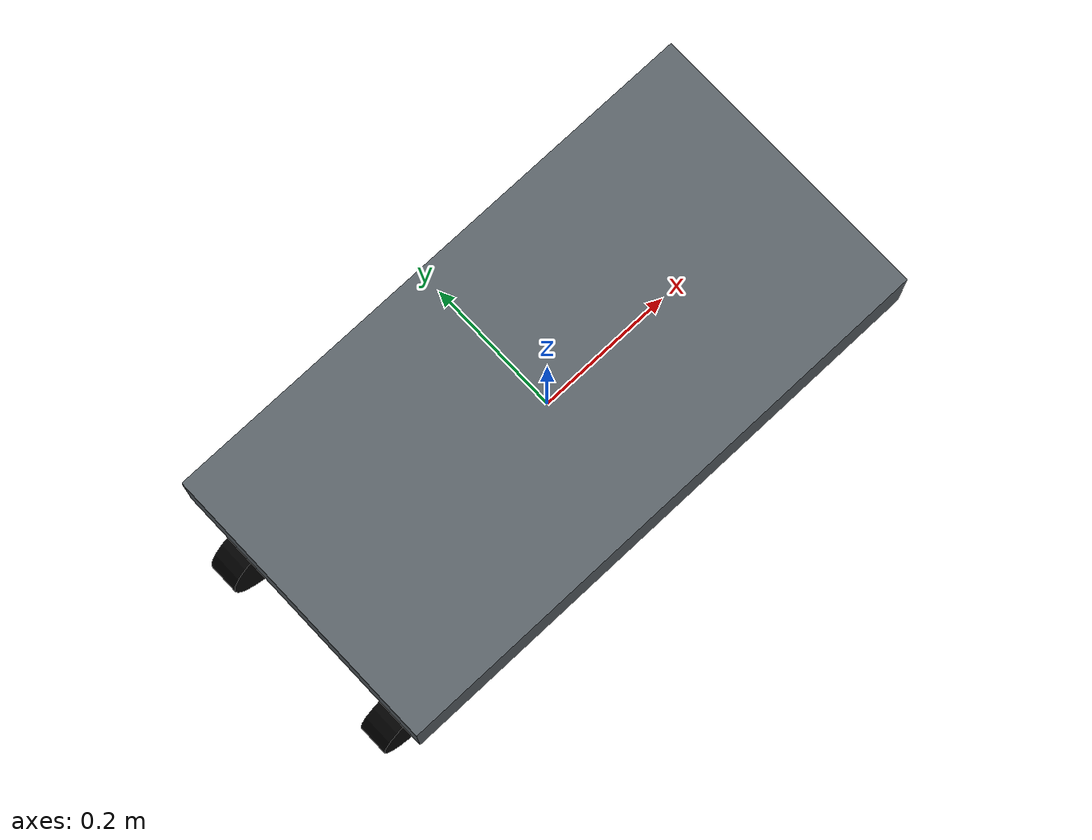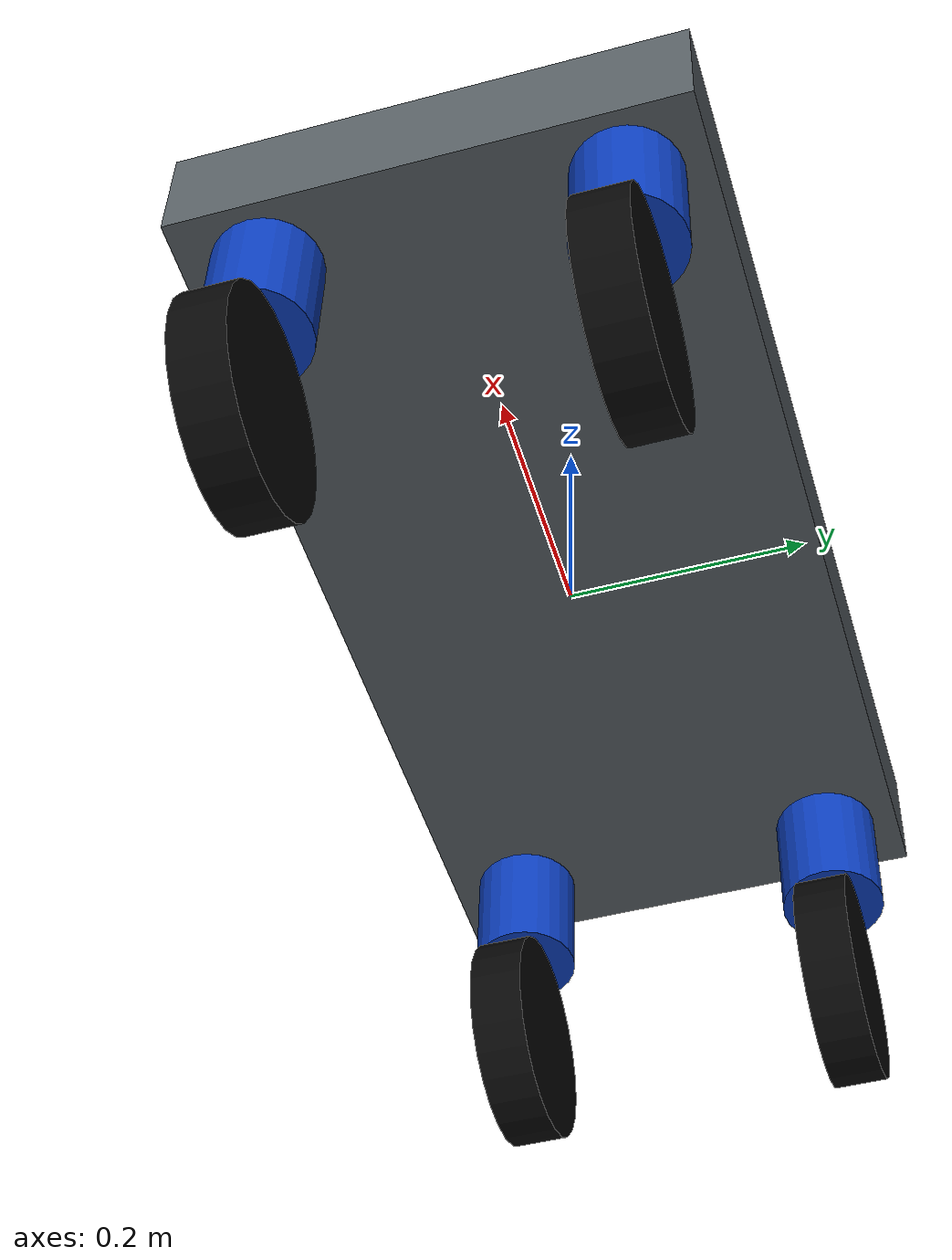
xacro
<?xml version="1.0"?>
<!--
  MARS Rover 简化 URDF/Xacro 模型。
  该模型用于 RViz 可视化和 /joint_states 验证：
  - base_link 是简化长方体底盘。
  - 每个轮组包含一个转向关节和一个驱动关节。
  - 当前模型不是完整 Gazebo 物理仿真模型，缺少 inertial 和 Gazebo 插件。
-->
<robot name="mars_rover" xmlns:xacro="http://www.ros.org/wiki/xacro">
  <!-- 底盘几何参数，单位为 m。wheelbase/track_width 来自前期文档初始值。 -->
  <xacro:property name="wheelbase" value="0.706"/>
  <xacro:property name="track_width" value="0.288"/>
  <xacro:property name="base_length" value="0.82"/>
  <xacro:property name="base_width" value="0.42"/>
  <xacro:property name="base_height" value="0.10"/>
  <xacro:property name="steering_height" value="0.12"/>
  <xacro:property name="wheel_radius" value="0.09"/>
  <xacro:property name="wheel_width" value="0.045"/>

  <!-- RViz 显示用材料颜色。 -->
  <material name="base_gray">
    <color rgba="0.35 0.38 0.40 1.0"/>
  </material>
  <material name="steering_blue">
    <color rgba="0.05 0.25 0.75 1.0"/>
  </material>
  <material name="wheel_black">
    <color rgba="0.03 0.03 0.03 1.0"/>
  </material>

  <!-- 机器人主体。当前是简化盒子，包含 visual 和 collision，但不包含 Gazebo 所需 inertial。 -->
  <link name="base_link">
    <visual>
      <origin xyz="0 0 0.08" rpy="0 0 0"/>
      <geometry>
        <box size="${base_length} ${base_width} ${base_height}"/>
      </geometry>
      <material name="base_gray"/>
    </visual>
    <collision>
      <origin xyz="0 0 0.08" rpy="0 0 0"/>
      <geometry>
        <box size="${base_length} ${base_width} ${base_height}"/>
      </geometry>
    </collision>
  </link>

  <!--
    轮组宏：根据 prefix、x、y 生成一个独立转向/驱动轮组。
    每个轮组包含：
    - steering_link：随转向关节绕 z 轴旋转。
    - steering_joint：转向关节。
    - wheel_link：车轮本体。
    - drive_joint：车轮滚动关节。
  -->
  <xacro:macro name="wheel_module" params="prefix x y">
    <!-- 转向模块的简化视觉模型。 -->
    <link name="${prefix}_steering_link">
      <visual>
        <origin xyz="0 0 -0.03" rpy="0 0 0"/>
        <geometry>
          <cylinder radius="0.045" length="${steering_height}"/>
        </geometry>
        <material name="steering_blue"/>
      </visual>
    </link>

    <!-- 转向关节：父级为 base_link，绕 z 轴旋转。 -->
    <joint name="${prefix}_steering_joint" type="continuous">
      <parent link="base_link"/>
      <child link="${prefix}_steering_link"/>
      <origin xyz="${x} ${y} 0.02" rpy="0 0 0"/>
      <axis xyz="0 0 1"/>
    </joint>

    <!-- 车轮的简化视觉/碰撞模型。 -->
    <link name="${prefix}_wheel_link">
      <visual>
        <origin xyz="0 0 -0.10" rpy="1.5708 0 0"/>
        <geometry>
          <cylinder radius="${wheel_radius}" length="${wheel_width}"/>
        </geometry>
        <material name="wheel_black"/>
      </visual>
      <collision>
        <origin xyz="0 0 -0.10" rpy="1.5708 0 0"/>
        <geometry>
          <cylinder radius="${wheel_radius}" length="${wheel_width}"/>
        </geometry>
      </collision>
    </link>

    <!-- 驱动关节：车轮绕自身 y 轴滚动。 -->
    <joint name="${prefix}_drive_joint" type="continuous">
      <parent link="${prefix}_steering_link"/>
      <child link="${prefix}_wheel_link"/>
      <origin xyz="0 0 -0.08" rpy="0 0 0"/>
      <axis xyz="0 1 0"/>
    </joint>
  </xacro:macro>

  <!-- 四个轮组的位置：+x 前方，+y 左侧。 -->
  <xacro:wheel_module prefix="front_left" x="${wheelbase / 2.0}" y="${track_width / 2.0}"/>
  <xacro:wheel_module prefix="front_right" x="${wheelbase / 2.0}" y="${-track_width / 2.0}"/>
  <xacro:wheel_module prefix="rear_left" x="${-wheelbase / 2.0}" y="${track_width / 2.0}"/>
  <xacro:wheel_module prefix="rear_right" x="${-wheelbase / 2.0}" y="${-track_width / 2.0}"/>
</robot>
